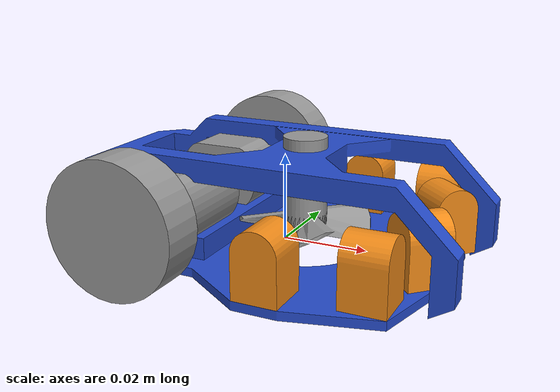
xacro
<?xml version="1.0"?>
<robot xmlns:xacro="http://ros.org/wiki/xacro" name="micro_mouse">
  <xacro:include filename="$(find micro_mouse)/urdf/shassie/shassie.urdf.xacro"/>
  <xacro:include filename="$(find micro_mouse)/urdf/frame/frame.urdf.xacro"/>
  <xacro:include filename="$(find micro_mouse)/urdf/wheel/wheel.urdf.xacro"/>

  <xacro:include filename="$(find micro_mouse)/urdf/lrf/lrf.urdf.xacro"/>

  <xacro:include filename="$(find micro_mouse)/urdf/motor/motor.urdf.xacro"/>
  <xacro:include filename="$(find micro_mouse)/urdf/fan_motor/fan_motor.urdf.xacro"/>

  <!--  link decide aria-->
  <link name="base_link"/>

  <xacro:shassie_v0
      name="shassie"
      parent="base_link">
    <origin xyz=" 0.000  0.000  0.000" rpy=" 0.000  0.000  0.000"/>
  </xacro:shassie_v0>

  <xacro:frame_v0
      name="frame"
      parent="shassie">
    <origin xyz=" 0.000  0.000  0.000" rpy=" 0.000  0.000  0.000"/>
  </xacro:frame_v0>

  <xacro:wheel_v0
      name="left_wheel"
      parent="left_motor_rotation_link">
    <origin xyz=" 0.000  0.000  0.000" rpy=" 0.000  0.000  0.000"/>
  </xacro:wheel_v0>

  <xacro:wheel_v0
      name="right_wheel"
      parent="right_motor_rotation_link">
    <origin xyz=" 0.000  0.000  0.000" rpy=" 0.000  0.000  0.000"/>
  </xacro:wheel_v0>

  <xacro:lrf_v0 name="lrf_L" parent="shassie">
    <origin xyz=" 0.010  0.030  0.007" rpy="0 0 ${ M_PI/2}"/>
  </xacro:lrf_v0>

  <xacro:lrf_v0 name="lrf_R" parent="shassie">
    <origin xyz=" 0.010 -0.030  0.007" rpy="0 0 ${-M_PI/2}"/>
  </xacro:lrf_v0>

  <xacro:lrf_v0 name="lrf_FL" parent="shassie">
    <origin xyz=" 0.030  0.025  0.007" rpy="0 0 0"/>
  </xacro:lrf_v0>

  <xacro:lrf_v0 name="lrf_FR" parent="shassie">
    <origin xyz=" 0.030 -0.025  0.007" rpy="0 0 0"/>
  </xacro:lrf_v0>

  <xacro:lrf_v0 name="lrf_DFL" parent="shassie">
    <origin xyz=" 0.035  0.010  0.007" rpy="0 0 ${-M_PI/4}"/>
  </xacro:lrf_v0>

  <xacro:lrf_v0 name="lrf_DFR" parent="shassie">
    <origin xyz=" 0.035 -0.010  0.007" rpy="0 0 ${ M_PI/4}"/>
  </xacro:lrf_v0>

  <xacro:motor_v0
      name="left_motor"
      parent="shassie">
    <origin xyz="-0.020 -0.025  0.0115" rpy=" 0.000  0.000 ${ M_PI/2}"/>
    <axis xyz="1 0 0"/>
  </xacro:motor_v0>

  <xacro:motor_v0
      name="right_motor"
      parent="shassie">
    <origin xyz="-0.020  0.025  0.0115" rpy=" 0.000  0.000 ${-M_PI/2}"/>
    <axis xyz="-1 0 0"/>
  </xacro:motor_v0>

  <xacro:fan_motor_v0
      name="fan_motor"
      parent="shassie">
    <origin xyz=" 0.005  0.000  0.015" rpy=" 0.000  0.000  0.000"/>
  </xacro:fan_motor_v0>

<!--gazebo decide aria-->
  <xacro:shassie_gazebo_v0 name="shassie"/>
  <xacro:frame_gazebo_v0 name="frame"/>

  <xacro:wheel_gazebo_v0 name="left_wheel"/>
  <xacro:wheel_gazebo_v0 name="right_wheel"/>

  <xacro:lrf_gazebo_v0
      name="lrf_L"
      min_rad  ="-0.001"
      max_rad  =" 0.001"
      min_range=" 0.010"
      max_range=" 0.200"
  />

  <xacro:lrf_gazebo_v0
      name="lrf_R"
      min_rad  ="-0.001"
      max_rad  =" 0.001"
      min_range=" 0.010"
      max_range=" 0.200"
  />

  <xacro:lrf_gazebo_v0
      name="lrf_FL"
      min_rad  ="-0.001"
      max_rad  =" 0.001"
      min_range=" 0.010"
      max_range=" 0.200"
  />

  <xacro:lrf_gazebo_v0
      name="lrf_FR"
      min_rad  ="-0.001"
      max_rad  =" 0.001"
      min_range=" 0.010"
      max_range=" 0.200"
  />

  <xacro:lrf_gazebo_v0
      name="lrf_DFL"
      min_rad  ="-0.001"
      max_rad  =" 0.001"
      min_range=" 0.010"
      max_range=" 0.200"
  />

  <xacro:lrf_gazebo_v0
      name="lrf_DFR"
      min_rad  ="-0.001"
      max_rad  =" 0.001"
      min_range=" 0.010"
      max_range=" 0.200"
  />

  <xacro:motor_gazebo_v0 name="left_motor"/>
  <xacro:motor_gazebo_v0 name="right_motor"/>
  <xacro:fan_motor_gazebo_v0 name="fan_motor"/>

<!--trans mission-->

  <xacro:motor_trans_v0 name="left_motor"/>
  <xacro:motor_trans_v0 name="right_motor"/>
  <xacro:fan_motor_trans_v0 name="fan_motor"/>

  <gazebo>
    <plugin name="gazebo_ros_control" filename="libgazebo_ros_control.so">
      <robotNamespace>micro_mouse</robotNamespace>
      <robotSimType>gazebo_ros_control/DefaultRobotHWSim</robotSimType>
    </plugin>
  </gazebo>

</robot>

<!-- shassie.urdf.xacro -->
<robot xmlns:xacro="http://ros.org/wiki/xacro">
  <xacro:include filename="$(find micro_mouse)/urdf/include.xacro"/>
  <xacro:include filename="$(find micro_mouse)/urdf/shassie/shassie.gazebo.xacro"/>

  <property name="shassie_mass" value="5.0"/>

  <xacro:macro name="shassie_v0" params="name parent *joint_origin">

    <joint name="${name}_joint" type="fixed">
      <insert_block name="joint_origin"/>
      <parent link="${parent}"/>
      <child link="${name}"/>
    </joint>

    <xacro:define_model_box
        name="${name}"
        mass="0.020"
        x="0.080"
        y="0.070"
        z="0.002"
        color_name="blue">
      <color rgba="0.8 0.8 0.8 1.0"/>
      <origin xyz="0 0 0" rpy="0 0 0"/>
      <mesh filename="package://micro_mouse/meshes/shassie.dae"/>
    </xacro:define_model_box>
  </xacro:macro>

</robot>

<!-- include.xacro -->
<robot xmlns:xacro="http://ros.org/wiki/xacro">
  <property name="package_name" value="2"/>
  <xacro:include filename="$(find micro_mouse)/urdf/common.xacro"/>
  <xacro:include filename="$(find micro_mouse)/urdf/inertia.xacro"/>
  <xacro:include filename="$(find micro_mouse)/urdf/figure.xacro"/>
</robot>

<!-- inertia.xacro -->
<robot xmlns:xacro="http://ros.org/wiki/xacro">

  <xacro:macro name="box_inertia" params="mass x y z">
    <mass value="${mass}"/>
    <inertia ixx="${(mass*(y*y+z*z))/12}" ixy="0" ixz="0"
         iyy="${(mass*(x*x+z*z))/12}" iyz="0"
         izz="${(mass*(x*x+y*y))/12}" />
  </xacro:macro>

  <xacro:macro name="cylinder_inertia" params="mass radius length">
    <mass value="${mass}"/>
    <inertia ixx="${((radius*radius)/4 + (length*length)/12)*mass}" ixy="0" ixz="0"
         iyy="${((radius*radius)/4 + (length*length)/12)*mass}" iyz="0"
         izz="${(mass*radius*radius)/2}" />
  </xacro:macro>

  <xacro:macro name="sphere_inertia" params="mass radius">
    <mass value="${mass}"/>
    <inertia ixx="${mass*radius*radius/5}" ixy="0" ixz="0"
         iyy="${mass*radius*radius/5}" iyz="0"
         izz="${mass*radius*radius/5}" />
  </xacro:macro>

</robot>

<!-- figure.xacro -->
<robot xmlns:xacro="http://ros.org/wiki/xacro">

  <xacro:macro name="define_box" params="name mass x y z color_name *origin *color">

    <link name="${name}">
      <!--visual detect area-->
      <visual>
        <geometry>
          <box size = "${x} ${y} ${z}"/>
        </geometry>
        <insert_block name="origin"/>
        <material name="${color_name}">
          <insert_block name="color"/>
        </material>
      </visual>
      <!--collision detect area-->
      <collision>
        <geometry>
          <box size = "${x} ${y} ${z}"/>
        </geometry>
        <insert_block name="origin"/>
      </collision>
      <!--inertia matrix-->
      <inertial>
        <box_inertia mass="${mass}"  x="${x}" y="${y}" z="${z}"/>
      </inertial>
    </link>
  </xacro:macro>

  <xacro:macro name="define_cylinder" params="name mass radius length color_name *origin *color">
    <link name="${name}">
      <!--visual detect area-->
      <visual>
        <geometry>
          <cylinder radius="${radius}" length="${length}"/>
        </geometry>
        <insert_block name="origin"/>
        <material name="${color_name}">
	        <insert_block name="color"/>
	      </material>
      </visual>

      <!--collision detect area-->
      <collision>
        <geometry>
          <cylinder radius="${radius}" length="${length}"/>
        </geometry>
        <insert_block name="origin"/>
      </collision>
      <!--inertia matrix-->
      <inertial>
        <cylinder_inertia mass="${mass}" radius="${radius}" length="${length}"/>
      </inertial>
    </link>
  </xacro:macro>

  <xacro:macro name="define_sphere" params="name mass radius color_name *origin *color">
    <link name="${name}">
      <!--visual detect area-->
      <visual>
        <geometry>
          <sphere radius="${radius}"/>
        </geometry>
        <insert_block name="origin"/>
        <material name="${color_name}">
	        <insert_block name="color"/>
	      </material>
      </visual>
      <!--collision detect area-->
      <collision>
        <geometry>
          <sphere radius="${radius}"/>
        </geometry>
        <insert_block name="origin"/>
      </collision>
      <!--inertia matrix-->
      <inertial>
        <sphere_inertia mass="${mass}" radius="${radius}"/>
      </inertial>
    </link>
  </xacro:macro>

  <xacro:macro name="define_model_box" params="name mass x y z color_name *origin *color *model">

    <link name="${name}">
      <!--visual detect area-->
      <visual>
        <geometry>
          <insert_block name="model"/>
        </geometry>
        <insert_block name="origin"/>
        <material name="${color_name}">
	        <insert_block name="color"/>
	      </material>
      </visual>
      <!--collision detect area-->
      <collision>
        <geometry>
          <insert_block name="model"/>
        </geometry>
        <insert_block name="origin"/>
      </collision>
      <!--inertia matrix-->
      <inertial>
        <box_inertia mass="${mass}"  x="${x}" y="${y}" z="${z}"/>
      </inertial>
    </link>
  </xacro:macro>

  <xacro:macro name="define_model_cylinder" params="name mass radius length color_name *origin *color *model">

    <link name="${name}">
      <!--visual detect area-->
      <visual>
        <geometry>
          <insert_block name="model"/>
        </geometry>
        <insert_block name="origin"/>
        <material name="${color_name}">
	        <insert_block name="color"/>
	      </material>
      </visual>
      <!--collision detect area-->
      <collision>
        <geometry>
          <insert_block name="model"/>
        </geometry>
        <insert_block name="origin"/>
      </collision>
      <!--inertia matrix-->
      <inertial>
        <cylinder_inertia mass="${mass}" radius="${radius}" length="${length}"/>
      </inertial>
    </link>
  </xacro:macro>

  <xacro:macro name="define_model_sphere" params="name mass radius color_name *origin *color *model">

    <link name="${name}">
      <!--visual detect area-->
      <visual>
        <geometry>
          <insert_block name="model"/>
        </geometry>
        <insert_block name="origin"/>
        <material name="${color_name}">
	        <insert_block name="color"/>
	      </material>
      </visual>
      <!--collision detect area-->
      <collision>
        <geometry>
          <insert_block name="model"/>
        </geometry>
        <insert_block name="origin"/>
      </collision>
      <!--inertia matrix-->
      <inertial>
        <sphere_inertia mass="${mass}"  radius="${radius}"/>
      </inertial>
    </link>
  </xacro:macro>

</robot>

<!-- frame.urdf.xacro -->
<robot xmlns:xacro="http://ros.org/wiki/xacro">
  <xacro:include filename="$(find micro_mouse)/urdf/include.xacro"/>
  <xacro:include filename="$(find micro_mouse)/urdf/frame/frame.gazebo.xacro"/>

  <xacro:macro name="frame_v0" params="name parent *joint_origin">

    <joint name="${name}_joint" type="fixed">
      <insert_block name="joint_origin"/>
      <parent link="${parent}"/>
      <child link="${name}"/>
    </joint>

    <xacro:define_model_box
        name="${name}"
        mass="0.020"
        x="0.080"
        y="0.070"
        z="0.002"
        color_name="blue">
      <color rgba="0.8 0.8 0.8 1.0"/>
      <origin xyz="0 0 0" rpy="0 0 0"/>
      <mesh filename="package://micro_mouse/meshes/frame.stl"/>
    </xacro:define_model_box>
  </xacro:macro>

</robot>

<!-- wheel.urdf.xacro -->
<robot xmlns:xacro="http://ros.org/wiki/xacro">
  <xacro:include filename="$(find micro_mouse)/urdf/include.xacro"/>
  <xacro:include filename="$(find micro_mouse)/urdf/wheel/wheel.gazebo.xacro"/>

  <xacro:macro name="wheel_v0" params="name parent *joint_origin">

    <joint name="${name}_joint" type="fixed">
      <insert_block name="joint_origin"/>
      <parent link="${parent}"/>
      <child link="${name}"/>
    </joint>

    <xacro:define_model_cylinder
        name="${name}"
        mass  ="0.010"
        radius="0.015"
        length="0.010"
        color_name="Grey">
      <color rgba="0.5  0.5  0.5  1.0"/>
      <origin xyz="0.0  0.0  0.0" rpy="0.0  0.0  0.0"/>
      <mesh filename="package://micro_mouse/meshes/new_wheel.dae"/>
    </xacro:define_model_cylinder>
  </xacro:macro>

</robot>

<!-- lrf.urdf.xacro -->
<robot xmlns:xacro="http://ros.org/wiki/xacro">

  <xacro:include filename="$(find micro_mouse)/urdf/include.xacro"/>
  <xacro:include filename="$(find micro_mouse)/urdf/lrf/lrf.gazebo.xacro"/>

  <xacro:macro name="lrf_v0" params="name parent *joint_origin">
    <joint name="${name}_joint" type="fixed">
      <insert_block name="joint_origin"/>
      <parent link="${parent}"/>
      <child link="${name}"/>
    </joint>

    <xacro:define_model_box
	      name="${name}"
	      mass="0.005"
	      x="0.010"
	      y="0.010"
	      z="0.050"
	      color_name="orange">
	    <color rgba="1.0 0.5 0 1.0"/>
	    <origin xyz="0 0 0" rpy="0 0 0"/>
	    <mesh filename="package://micro_mouse/meshes/light_sensor.dae"/>
	  </xacro:define_model_box>

  </xacro:macro>

</robot>

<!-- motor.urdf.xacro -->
<robot xmlns:xacro="http://ros.org/wiki/xacro">
  <xacro:include filename="$(find micro_mouse)/urdf/include.xacro"/>
  <xacro:include filename="$(find micro_mouse)/urdf/motor/motor.gazebo.xacro"/>
  <xacro:include filename="$(find micro_mouse)/urdf/motor/motor.transmission.xacro"/>

  <xacro:macro name="motor_v0" params="name parent *origin *axis">

    <joint name="${name}_fixed" type="fixed">
      <parent link="${parent}"/>
      <child  link="${name}"/>
      <insert_block name="origin"/>
    </joint>

    <joint name="${name}_rotation_joint" type="continuous">
      <parent link="${name}"/>
      <child  link="${name}_rotation_link"/>
      <origin xyz="-0.010  0.000  0.000" rpy=" 0.000  0.000  0.000"/>
      <insert_block name="axis"/>
    </joint>

    <link name="${name}_rotation_link"/>

    <xacro:define_model_cylinder
        name="${name}"
        mass  ="0.050"
        radius="0.022"
        length="0.070"
        color_name="Grey">
      <color rgba="0.5  0.5  0.5  1.0"/>
      <origin xyz="0.0  0.0  0.0" rpy="0.0  0.0  0.0"/>
      <mesh filename="package://micro_mouse/meshes/motor.dae"/>
    </xacro:define_model_cylinder>

  </xacro:macro>

</robot>

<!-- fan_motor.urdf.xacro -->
<robot xmlns:xacro="http://ros.org/wiki/xacro">
  <xacro:include filename="$(find micro_mouse)/urdf/include.xacro"/>
  <xacro:include filename="$(find micro_mouse)/urdf/fan_motor/fan_motor.gazebo.xacro"/>
  <xacro:include filename="$(find micro_mouse)/urdf/fan_motor/fan_motor.transmission.xacro"/>

  <xacro:macro name="fan_motor_v0" params="name parent *origin">

    <joint name="${name}_fixed" type="fixed">
      <parent link="${parent}"/>
      <child  link="${name}"/>
      <insert_block name="origin"/>
    </joint>

    <joint name="${name}_rotation_joint" type="continuous">
      <parent link="${name}"/>
      <child  link="${name}_rotation_link"/>
      <origin xyz=" 0.000  0.000 -0.010" rpy=" 0.000  0.000  0.000"/>
      <axis xyz="0 0 1"/>

    </joint>

    <xacro:define_model_cylinder
        name="${name}_rotation_link"
        mass  ="0.005"
        radius="0.030"
        length="0.005"
        color_name="Grey">
      <color rgba="0.5  0.5  0.5  1.0"/>
      <origin xyz="0.0  0.0  0.0" rpy="0.0  0.0  0.0"/>
      <mesh filename="package://micro_mouse/meshes/fan.dae"/>
    </xacro:define_model_cylinder>

    <xacro:define_model_cylinder
        name="${name}"
        mass  ="0.015"
        radius="0.005"
        length="0.020"
        color_name="Grey">
      <color rgba="0.5  0.5  0.5  1.0"/>
      <origin xyz="0.0  0.0  0.0" rpy="0.0  0.0  0.0"/>
      <mesh filename="package://micro_mouse/meshes/fan_motor.dae"/>
    </xacro:define_model_cylinder>

  </xacro:macro>

</robot>
